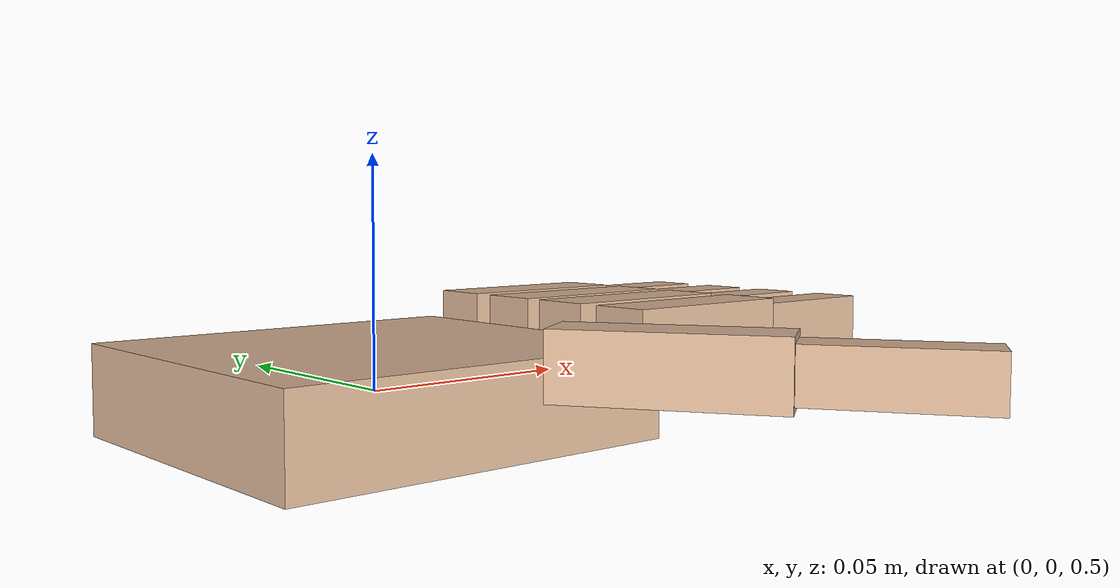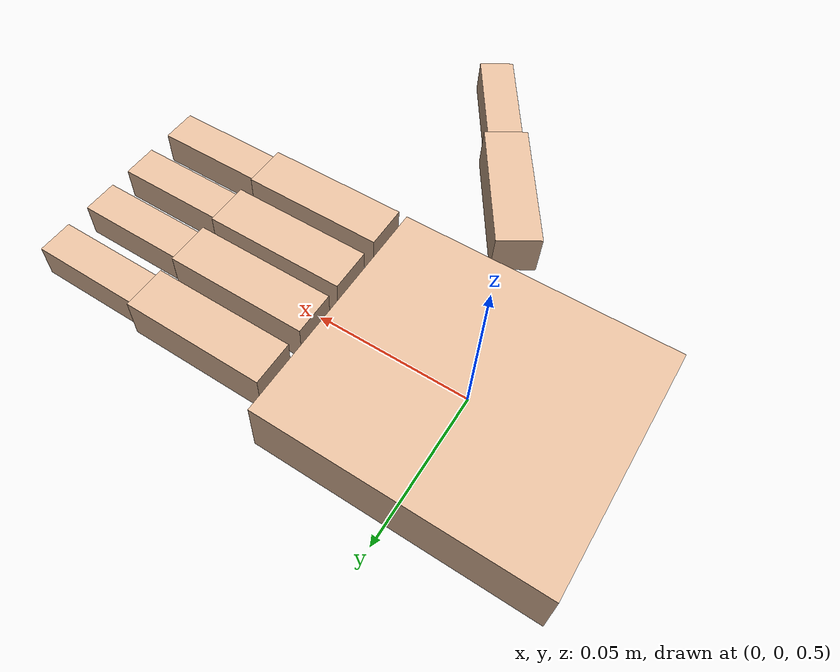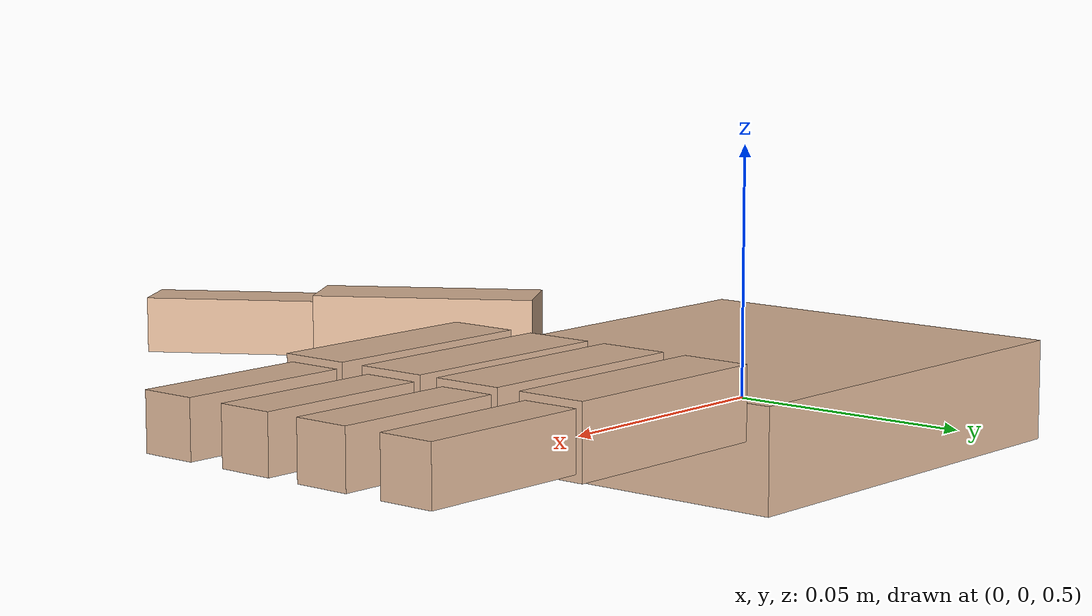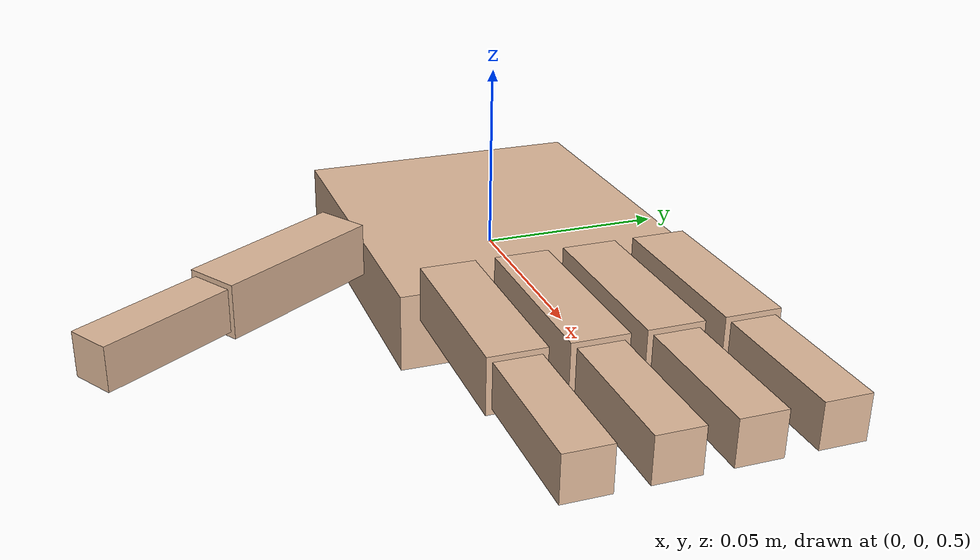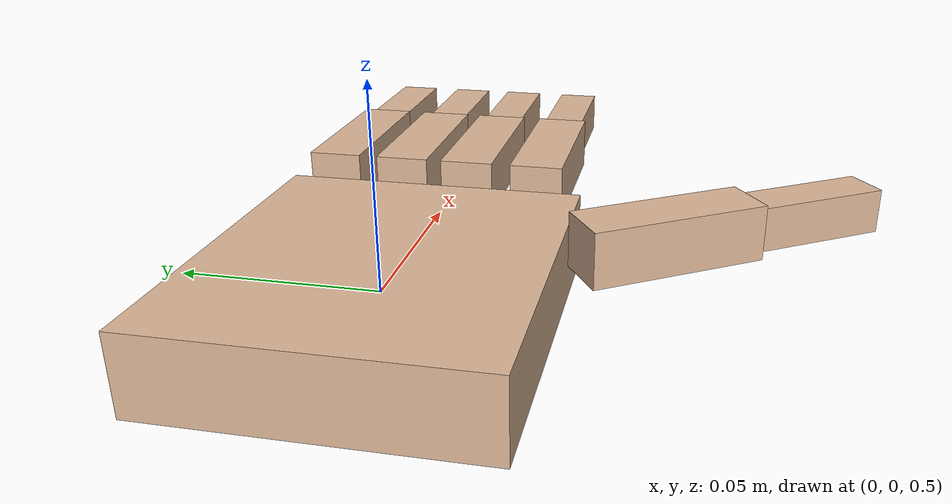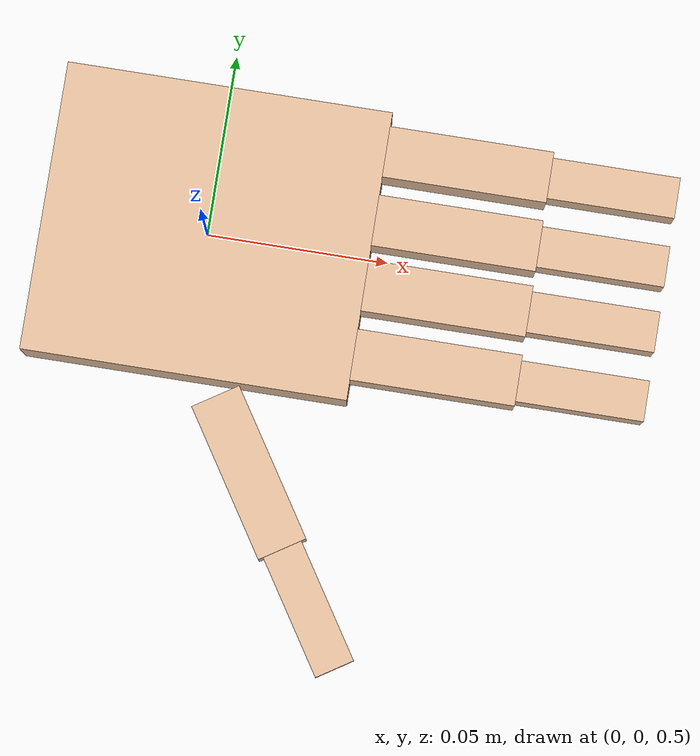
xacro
<?xml version="1.0"?>
<robot xmlns:xacro="http://www.ros.org/wiki/xacro" name="simple_hand">

  <xacro:arg name="use_gazebo" default="false"/>

  <xacro:property name="palm_x" value="0.09"/>
  <xacro:property name="palm_y" value="0.08"/>
  <xacro:property name="palm_z" value="0.02"/>
  <xacro:property name="seg_w" value="0.014"/>
  <xacro:property name="seg_d" value="0.014"/>
  <xacro:property name="proximal_len" value="0.045"/>
  <xacro:property name="distal_len" value="0.035"/>
  <xacro:property name="finger_mass" value="0.02"/>
  <xacro:property name="joint_upper" value="1.6"/>
  <xacro:property name="finger_rest_pitch" value="1.5708"/>

  <material name="skin">
    <color rgba="0.87 0.72 0.60 1.0"/>
  </material>

  <xacro:macro name="box_inertial" params="mass x y z">
    <inertial>
      <mass value="${mass}"/>
      <inertia
        ixx="${mass / 12.0 * (y*y + z*z)}" ixy="0" ixz="0"
        iyy="${mass / 12.0 * (x*x + z*z)}" iyz="0"
        izz="${mass / 12.0 * (x*x + y*y)}"/>
    </inertial>
  </xacro:macro>

  <xacro:macro name="finger" params="name x y z yaw">
    <link name="${name}_proximal">
      <visual>
        <origin xyz="0 0 ${proximal_len / 2}" rpy="0 0 0"/>
        <geometry><box size="${seg_w} ${seg_d} ${proximal_len}"/></geometry>
        <material name="skin"/>
      </visual>
      <collision>
        <origin xyz="0 0 ${proximal_len / 2}" rpy="0 0 0"/>
        <geometry><box size="${seg_w} ${seg_d} ${proximal_len}"/></geometry>
      </collision>
      <xacro:box_inertial mass="${finger_mass}" x="${seg_w}" y="${seg_d}" z="${proximal_len}"/>
    </link>

    <joint name="${name}_j1" type="revolute">
      <parent link="palm"/>
      <child link="${name}_proximal"/>
      <origin xyz="${x} ${y} ${z}" rpy="0 ${finger_rest_pitch} ${yaw}"/>
      <axis xyz="0 1 0"/>
      <limit lower="0.0" upper="${joint_upper}" effort="5.0" velocity="3.0"/>
    </joint>

    <link name="${name}_distal">
      <visual>
        <origin xyz="0 0 ${distal_len / 2}" rpy="0 0 0"/>
        <geometry><box size="${seg_w * 0.8} ${seg_d * 0.8} ${distal_len}"/></geometry>
        <material name="skin"/>
      </visual>
      <collision>
        <origin xyz="0 0 ${distal_len / 2}" rpy="0 0 0"/>
        <geometry><box size="${seg_w * 0.8} ${seg_d * 0.8} ${distal_len}"/></geometry>
      </collision>
      <xacro:box_inertial mass="${finger_mass * 0.7}" x="${seg_w * 0.8}" y="${seg_d * 0.8}" z="${distal_len}"/>
    </link>

    <joint name="${name}_j2" type="revolute">
      <parent link="${name}_proximal"/>
      <child link="${name}_distal"/>
      <origin xyz="0 0 ${proximal_len}" rpy="0 0 0"/>
      <axis xyz="0 1 0"/>
      <limit lower="0.0" upper="${joint_upper}" effort="5.0" velocity="3.0"/>
    </joint>
  </xacro:macro>

  <link name="world"/>

  <!-- Lift the palm off the ground so the fingers have room to curl down in
       Gazebo without colliding with the ground plane (which pinned the curl in
       RViz-free physics). Harmless in RViz. -->
  <joint name="world_to_palm" type="fixed">
    <parent link="world"/>
    <child link="palm"/>
    <origin xyz="0 0 0.5" rpy="0 0 0"/>
  </joint>

  <link name="palm">
    <visual>
      <geometry><box size="${palm_x} ${palm_y} ${palm_z}"/></geometry>
      <material name="skin"/>
    </visual>
    <collision>
      <geometry><box size="${palm_x} ${palm_y} ${palm_z}"/></geometry>
    </collision>
    <xacro:box_inertial mass="0.3" x="${palm_x}" y="${palm_y}" z="${palm_z}"/>
  </link>

  <!-- Mounted along the palm's leading edge (+x), fanned out across y;
       the thumb mounts on the side edge, rotated out. -->
  <xacro:finger name="index"  x="0.045" y="-0.028" z="0.01" yaw="0.0"/>
  <xacro:finger name="middle" x="0.045" y="-0.009" z="0.01" yaw="0.0"/>
  <xacro:finger name="ring"   x="0.045" y="0.009"  z="0.01" yaw="0.0"/>
  <xacro:finger name="pinky"  x="0.045" y="0.028"  z="0.01" yaw="0.0"/>
  <xacro:finger name="thumb"  x="0.01"  y="-0.045" z="0.01" yaw="-1.0"/>

  <ros2_control name="hand" type="system">
    <hardware>
      <xacro:if value="$(arg use_gazebo)">
        <plugin>gz_ros2_control/GazeboSimSystem</plugin>
      </xacro:if>
      <xacro:unless value="$(arg use_gazebo)">
        <plugin>mock_components/GenericSystem</plugin>
      </xacro:unless>
    </hardware>
    <joint name="thumb_j1"><command_interface name="position"/><state_interface name="position"/></joint>
    <joint name="thumb_j2"><command_interface name="position"/><state_interface name="position"/></joint>
    <joint name="index_j1"><command_interface name="position"/><state_interface name="position"/></joint>
    <joint name="index_j2"><command_interface name="position"/><state_interface name="position"/></joint>
    <joint name="middle_j1"><command_interface name="position"/><state_interface name="position"/></joint>
    <joint name="middle_j2"><command_interface name="position"/><state_interface name="position"/></joint>
    <joint name="ring_j1"><command_interface name="position"/><state_interface name="position"/></joint>
    <joint name="ring_j2"><command_interface name="position"/><state_interface name="position"/></joint>
    <joint name="pinky_j1"><command_interface name="position"/><state_interface name="position"/></joint>
    <joint name="pinky_j2"><command_interface name="position"/><state_interface name="position"/></joint>
  </ros2_control>

  <xacro:if value="$(arg use_gazebo)">
    <gazebo>
      <plugin filename="gz_ros2_control-system"
              name="gz_ros2_control::GazeboSimROS2ControlPlugin">
        <parameters>$(find gesture_sim)/config/hand_controllers.yaml</parameters>
        <position_proportional_gain>0.5</position_proportional_gain>
      </plugin>
    </gazebo>
  </xacro:if>

</robot>
